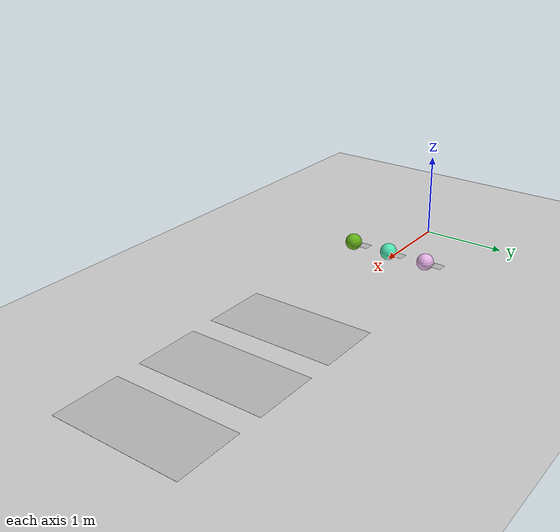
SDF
<sdf version="1.6">
 <world name="default">
  <model name="ground_plane">
   <static>1</static>
   <link name="link">
    <collision name="collision">
     <geometry><plane><normal>0 0 1</normal><size>100 100</size></plane></geometry>
     <surface><friction><ode><mu>100</mu><mu2>50</mu2></ode></friction></surface>
    </collision>
    <visual name="visual">
     <cast_shadows>0</cast_shadows>
     <geometry><plane><normal>0 0 1</normal><size>100 100</size></plane></geometry>
     <material>
      <script><uri>file://media/materials/scripts/gazebo.material</uri><name>Gazebo/Grey</name></script>
     </material>
    </visual>
   </link>
  </model>
  <light name="sun" type="directional">
   <pose>0 0 10 0 -0 0</pose>
   <diffuse>0.8 0.8 0.8 1</diffuse>
   <specular>0.1 0.1 0.1 1</specular>
   <attenuation>
    <range>1000</range>
    <constant>0.9</constant>
    <linear>0.01</linear>
    <quadratic>0.001</quadratic>
   </attenuation>
   <direction>-0.5 0.5 -1</direction>
  </light>
  <gravity>0 0 -9.8</gravity>
  <magnetic_field>6e-06 2.3e-05 -4.2e-05</magnetic_field>
  <atmosphere type="adiabatic"/>
  <physics name="default_physics" default="0" type="ode">
   <max_step_size>0.001</max_step_size>
   <real_time_factor>1</real_time_factor>
   <real_time_update_rate>1000</real_time_update_rate>
  </physics>
  <scene><ambient>0.4 0.4 0.4 1</ambient><background>0.7 0.7 0.7 1</background><shadows>1</shadows></scene>
  <spherical_coordinates>
   <surface_model>EARTH_WGS84</surface_model>
   <latitude_deg>0</latitude_deg>
   <longitude_deg>0</longitude_deg>
   <elevation>0</elevation>
   <heading_deg>0</heading_deg>
  </spherical_coordinates>
  <model name="two_2">
   <static>1</static>
   <link name="link">
    <pose>0 0 1e-05 0 0 -1.57</pose>
    <collision name="collision">
     <geometry><plane><normal>0 0 1</normal><size>1 1</size></plane></geometry>
     <surface><friction><ode><mu>0.8</mu><mu2>0.5</mu2></ode></friction></surface>
    </collision>
    <visual name="visual">
     <geometry><plane><normal>0 0 1</normal><size>0.125 0.125</size></plane></geometry>
     <material>
      <script><uri>model://two/materials/scripts/two.material</uri><name>BYU2/ground</name></script>
     </material>
    </visual>
   </link>
   <pose>0.842266 -0.56634 0 0 -0 0</pose>
  </model>
  <model name="one">
   <static>1</static>
   <link name="link">
    <pose>0 0 1e-05 0 0 -1.57</pose>
    <collision name="collision">
     <geometry><plane><normal>0 0 1</normal><size>1 1</size></plane></geometry>
     <surface><friction><ode><mu>0.8</mu><mu2>0.5</mu2></ode></friction></surface>
    </collision>
    <visual name="visual">
     <geometry><plane><normal>0 0 1</normal><size>0.125 0.125</size></plane></geometry>
     <material>
      <script><uri>model://one/materials/scripts/one.material</uri><name>BYU1/ground</name></script>
     </material>
    </visual>
   </link>
   <pose>0.843235 0.060661 0 0 -0 0</pose>
  </model>
  <model name="three_2">
   <static>1</static>
   <link name="link">
    <pose>0 0 1e-05 0 0 -1.57</pose>
    <collision name="collision">
     <geometry><plane><normal>0 0 1</normal><size>1 1</size></plane></geometry>
     <surface><friction><ode><mu>0.8</mu><mu2>0.5</mu2></ode></friction></surface>
    </collision>
    <visual name="visual">
     <geometry><plane><normal>0 0 1</normal><size>0.125 0.125</size></plane></geometry>
     <material>
      <script><uri>model://three/materials/scripts/three.material</uri><name>BYU3/ground</name></script>
     </material>
    </visual>
   </link>
   <pose>0.837887 0.58767 0 0 -0 0</pose>
  </model>
  <model name="by">
   <static>1</static>
   <link name="link">
    <pose>0 0 1e-05 0 0 -1.57</pose>
    <collision name="collision">
     <geometry><plane><normal>0 0 1</normal><size>1 1</size></plane></geometry>
     <surface><friction><ode><mu>0.8</mu><mu2>0.5</mu2></ode></friction></surface>
    </collision>
    <visual name="visual">
     <cast_shadows>0</cast_shadows>
     <geometry><plane><normal>0 0 1</normal><size>0.125 0.125</size></plane></geometry>
     <material>
      <script><uri>model://by/materials/scripts/by.material</uri><name>BY/ground</name></script>
     </material>
    </visual>
   </link>
   <pose>0.838354 0.464559 0 0 -0 0</pose>
  </model>
  <model name="by_2">
   <static>1</static>
   <link name="link">
    <pose>0 0 1e-05 0 0 -1.57</pose>
    <collision name="collision">
     <geometry><plane><normal>0 0 1</normal><size>1 1</size></plane></geometry>
     <surface><friction><ode><mu>0.8</mu><mu2>0.5</mu2></ode></friction></surface>
    </collision>
    <visual name="visual">
     <cast_shadows>0</cast_shadows>
     <geometry><plane><normal>0 0 1</normal><size>0.125 0.125</size></plane></geometry>
     <material>
      <script><uri>model://by/materials/scripts/by.material</uri><name>BY/ground</name></script>
     </material>
    </visual>
   </link>
   <pose>0.838897 -0.438574 0 0 -0 0</pose>
  </model>
  <model name="by_5">
   <static>1</static>
   <link name="link">
    <pose>0 0 1e-05 0 0 -1.57</pose>
    <collision name="collision">
     <geometry><plane><normal>0 0 1</normal><size>1 1</size></plane></geometry>
     <surface><friction><ode><mu>0.8</mu><mu2>0.5</mu2></ode></friction></surface>
    </collision>
    <visual name="visual">
     <cast_shadows>0</cast_shadows>
     <geometry><plane><normal>0 0 1</normal><size>0.125 0.125</size></plane></geometry>
     <material>
      <script><uri>model://by/materials/scripts/by.material</uri><name>BY/ground</name></script>
     </material>
    </visual>
   </link>
   <pose>0.844841 -0.063218 0 0 -0 0</pose>
  </model>
  <model name="P">
   <static>1</static>
   <link name="link">
    <pose>0 0 1e-05 0 -0 0</pose>
    <collision name="collision">
     <geometry><plane><normal>0 0 1</normal><size>1.5 0.75</size></plane></geometry>
     <surface><friction><ode><mu>100</mu><mu2>50</mu2></ode></friction></surface>
    </collision>
    <visual name="visual">
     <cast_shadows>0</cast_shadows>
     <geometry><plane><normal>0 0 1</normal><size>0.75 1.5</size></plane></geometry>
     <material><script><uri>model://P/materials/scripts/P.material</uri><name>P/ground</name></script></material>
    </visual>
   </link>
   <pose>2.97929 0.014912 0 0 -0 0</pose>
  </model>
  <model name="N_0">
   <static>1</static>
   <link name="link">
    <pose>0 0 1e-05 0 -0 0</pose>
    <collision name="collision">
     <geometry><plane><normal>0 0 1</normal><size>1.5 0.75</size></plane></geometry>
     <surface><friction><ode><mu>100</mu><mu2>50</mu2></ode></friction></surface>
    </collision>
    <visual name="visual">
     <cast_shadows>0</cast_shadows>
     <geometry><plane><normal>0 0 1</normal><size>0.75 1.5</size></plane></geometry>
     <material><script><uri>model://N/materials/scripts/N.material</uri><name>N/ground</name></script></material>
    </visual>
   </link>
   <pose>3.99573 0.013731 0 0 -0 0</pose>
  </model>
  <model name="B">
   <static>1</static>
   <link name="link">
    <pose>0 0 1e-05 0 -0 0</pose>
    <collision name="collision">
     <geometry><plane><normal>0 0 1</normal><size>1.5 0.75</size></plane></geometry>
     <surface><friction><ode><mu>100</mu><mu2>50</mu2></ode></friction></surface>
    </collision>
    <visual name="visual">
     <cast_shadows>0</cast_shadows>
     <geometry><plane><normal>0 0 1</normal><size>0.75 1.5</size></plane></geometry>
     <material><script><uri>model://B/materials/scripts/B.material</uri><name>B/ground</name></script></material>
    </visual>
   </link>
   <pose>5.01662 0.011614 0 0 -0 0</pose>
  </model>
  <model name="unit_sphere9_1_0">
   <link name="link">
    <inertial>
     <mass>1</mass>
     <inertia><ixx>0.1</ixx><ixy>0</ixy><ixz>0</ixz><iyy>0.1</iyy><iyz>0</iyz><izz>0.1</izz></inertia>
    </inertial>
    <visual name="ModelPreview_1::link::visual_1">
     <geometry><sphere><radius>0.1</radius></sphere></geometry>
     <material>
      <script><name>Gazebo/Grey</name><uri>file://media/materials/scripts/gazebo.material</uri></script>
      <ambient>0.5 0.9 0.6 1</ambient>
      <diffuse>0.9 0.7 0.9 1</diffuse>
      <specular>0.4 0 0 1</specular>
      <emissive>0.9 0 0.6 0.6</emissive>
      <shader type="vertex"><normal_map>__default__</normal_map></shader>
     </material>
    </visual>
    <collision name="collision">
     <geometry><sphere><radius>0.1</radius></sphere></geometry>
     <surface>
      <friction>
       <ode><mu>1</mu><mu2>1</mu2><fdir1>0 0 0</fdir1><slip1>0</slip1><slip2>0</slip2></ode>
       <torsional>
        <coefficient>1</coefficient>
        <patch_radius>0</patch_radius>
        <surface_radius>0</surface_radius>
        <use_patch_radius>1</use_patch_radius>
        <ode><slip>0</slip></ode>
       </torsional>
      </friction>
      <bounce><restitution_coefficient>0.8</restitution_coefficient><threshold>0</threshold></bounce>
      <contact>
       <collide_without_contact>0</collide_without_contact>
       <collide_without_contact_bitmask>1</collide_without_contact_bitmask>
       <collide_bitmask>1</collide_bitmask>
       <ode>
        <soft_cfm>0</soft_cfm>
        <soft_erp>0.2</soft_erp>
        <kp>1e+06</kp>
        <kd>1</kd>
        <max_vel>25</max_vel>
        <min_depth>0</min_depth>
       </ode>
       <bullet>
        <split_impulse>1</split_impulse>
        <split_impulse_penetration_threshold>-0.01</split_impulse_penetration_threshold>
        <soft_cfm>0</soft_cfm>
        <soft_erp>0.2</soft_erp>
        <kp>1e+06</kp>
        <kd>1</kd>
       </bullet>
      </contact>
     </surface>
    </collision>
   </link>
   <static>0</static>
   <pose>1 0.5 0.100009 0 -0 0</pose>
  </model>
  <model name="unit_sphere9_2">
   <link name="link">
    <inertial>
     <mass>1</mass>
     <inertia><ixx>0.1</ixx><ixy>0</ixy><ixz>0</ixz><iyy>0.1</iyy><iyz>0</iyz><izz>0.1</izz></inertia>
    </inertial>
    <visual name="ModelPreview_1::link::visual_1">
     <geometry><sphere><radius>0.1</radius></sphere></geometry>
     <material>
      <script><name>Gazebo/Grey</name><uri>file://media/materials/scripts/gazebo.material</uri></script>
      <ambient>0 0 0.8 1</ambient>
      <diffuse>0.3 0.9 0.7 1</diffuse>
      <specular>0.5 0.4 0.5 1</specular>
      <emissive>0.3 0.4 0.9 0.6</emissive>
      <shader type="vertex"><normal_map>__default__</normal_map></shader>
     </material>
    </visual>
    <collision name="collision">
     <geometry><sphere><radius>0.1</radius></sphere></geometry>
     <surface>
      <friction>
       <ode><mu>1</mu><mu2>1</mu2><fdir1>0 0 0</fdir1><slip1>0</slip1><slip2>0</slip2></ode>
       <torsional>
        <coefficient>1</coefficient>
        <patch_radius>0</patch_radius>
        <surface_radius>0</surface_radius>
        <use_patch_radius>1</use_patch_radius>
        <ode><slip>0</slip></ode>
       </torsional>
      </friction>
      <bounce><restitution_coefficient>0.8</restitution_coefficient><threshold>0</threshold></bounce>
      <contact>
       <collide_without_contact>0</collide_without_contact>
       <collide_without_contact_bitmask>1</collide_without_contact_bitmask>
       <collide_bitmask>1</collide_bitmask>
       <ode>
        <soft_cfm>0</soft_cfm>
        <soft_erp>0.2</soft_erp>
        <kp>1e+06</kp>
        <kd>1</kd>
        <max_vel>25</max_vel>
        <min_depth>0</min_depth>
       </ode>
       <bullet>
        <split_impulse>1</split_impulse>
        <split_impulse_penetration_threshold>-0.01</split_impulse_penetration_threshold>
        <soft_cfm>0</soft_cfm>
        <soft_erp>0.2</soft_erp>
        <kp>1e+06</kp>
        <kd>1</kd>
       </bullet>
      </contact>
     </surface>
    </collision>
   </link>
   <static>0</static>
   <pose>1 0 0.100009 0 -0 0</pose>
  </model>
  <model name="unit_sphere9_5">
   <link name="link">
    <inertial>
     <mass>1</mass>
     <inertia><ixx>0.1</ixx><ixy>0</ixy><ixz>0</ixz><iyy>0.1</iyy><iyz>0</iyz><izz>0.1</izz></inertia>
    </inertial>
    <visual name="ModelPreview_1::link::visual_1">
     <geometry><sphere><radius>0.1</radius></sphere></geometry>
     <material>
      <script><name>Gazebo/Grey</name><uri>file://media/materials/scripts/gazebo.material</uri></script>
      <ambient>0.4 0.7 0.1 1</ambient>
      <diffuse>0.7 0.7 0.7 1</diffuse>
      <specular>0.6 1 0.7 1</specular>
      <emissive>0.3 1 0.6 0.6</emissive>
      <shader type="vertex"><normal_map>__default__</normal_map></shader>
     </material>
    </visual>
    <collision name="collision">
     <geometry><sphere><radius>0.1</radius></sphere></geometry>
     <surface>
      <friction>
       <ode><mu>1</mu><mu2>1</mu2><fdir1>0 0 0</fdir1><slip1>0</slip1><slip2>0</slip2></ode>
       <torsional>
        <coefficient>1</coefficient>
        <patch_radius>0</patch_radius>
        <surface_radius>0</surface_radius>
        <use_patch_radius>1</use_patch_radius>
        <ode><slip>0</slip></ode>
       </torsional>
      </friction>
      <bounce><restitution_coefficient>0.8</restitution_coefficient><threshold>0</threshold></bounce>
      <contact>
       <collide_without_contact>0</collide_without_contact>
       <collide_without_contact_bitmask>1</collide_without_contact_bitmask>
       <collide_bitmask>1</collide_bitmask>
       <ode>
        <soft_cfm>0</soft_cfm>
        <soft_erp>0.2</soft_erp>
        <kp>1e+06</kp>
        <kd>1</kd>
        <max_vel>25</max_vel>
        <min_depth>0</min_depth>
       </ode>
       <bullet>
        <split_impulse>1</split_impulse>
        <split_impulse_penetration_threshold>-0.01</split_impulse_penetration_threshold>
        <soft_cfm>0</soft_cfm>
        <soft_erp>0.2</soft_erp>
        <kp>1e+06</kp>
        <kd>1</kd>
       </bullet>
      </contact>
     </surface>
    </collision>
   </link>
   <static>0</static>
   <pose>1 -0.5 0.100009 0 -0 0</pose>
  </model>
 </world>
</sdf>
